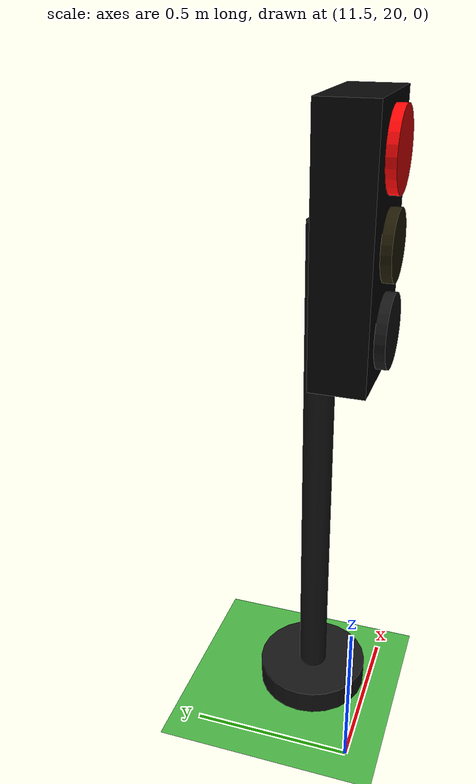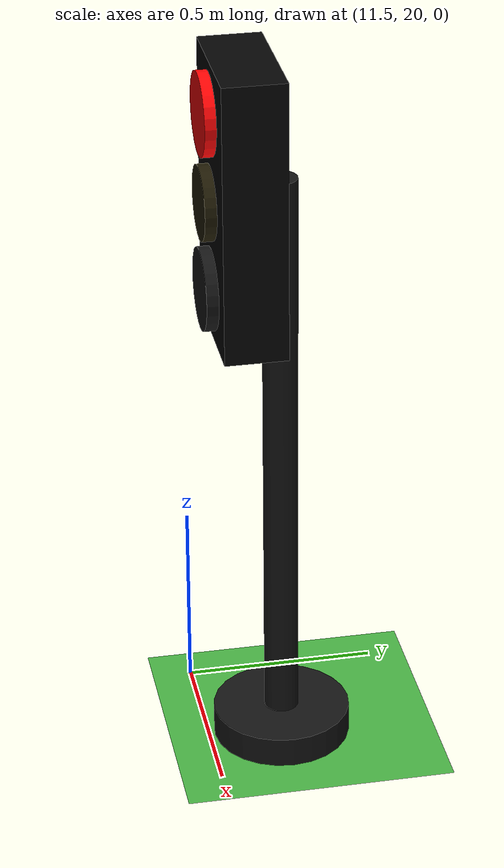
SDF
<sdf version="1.10">
 <world name="city_second">
  <model name="ground_plane">
   <static>true</static>
   <link name="link">
    <collision name="collision">
     <geometry><plane><normal>0 0 1</normal><size>300 300</size></plane></geometry>
    </collision>
    <visual name="visual">
     <geometry><plane><normal>0 0 1</normal><size>300 300</size></plane></geometry>
     <material>
      <ambient>0.280000001 0.689999998 0.25999999 1</ambient>
      <diffuse>0.280000001 0.689999998 0.25999999 1</diffuse>
      <specular>0.0299999993 0.0299999993 0.0299999993 1</specular>
     </material>
    </visual>
    <inertial>
     <mass>1</mass>
     <inertia><ixx>1</ixx><ixy>0</ixy><ixz>0</ixz><iyy>1</iyy><iyz>0</iyz><izz>1</izz></inertia>
    </inertial>
   </link>
  </model>
  <model name="simple_traffic_light_red_south_2">
   <static>true</static>
   <pose>11.805923389308813 20.195423981041646 0 0 0 -3.1415900000000754</pose>
   <link name="base">
    <pose>0 0 0.040000000000000001 0 0 0</pose>
    <collision name="collision">
     <geometry>
      <cylinder><radius>0.17999999999999999</radius><length>0.080000000000000002</length></cylinder>
     </geometry>
    </collision>
    <visual name="visual">
     <geometry>
      <cylinder><radius>0.17999999999999999</radius><length>0.080000000000000002</length></cylinder>
     </geometry>
     <material>
      <ambient>0.0799999982 0.0799999982 0.0799999982 1</ambient>
      <diffuse>0.0799999982 0.0799999982 0.0799999982 1</diffuse>
      <specular>0.150000006 0.150000006 0.150000006 1</specular>
      <emissive>0 0 0 1</emissive>
     </material>
    </visual>
    <inertial>
     <mass>1</mass>
     <inertia><ixx>1</ixx><ixy>0</ixy><ixz>0</ixz><iyy>1</iyy><iyz>0</iyz><izz>1</izz></inertia>
    </inertial>
   </link>
   <link name="pole">
    <pose>0 7.1054273576010019e-15 0.80000000000000004 0 0 0</pose>
    <collision name="collision">
     <geometry>
      <cylinder><radius>0.044999999999999998</radius><length>1.6000000000000001</length></cylinder>
     </geometry>
    </collision>
    <visual name="visual">
     <geometry>
      <cylinder><radius>0.044999999999999998</radius><length>1.6000000000000001</length></cylinder>
     </geometry>
     <material>
      <ambient>0.0799999982 0.0799999982 0.0799999982 1</ambient>
      <diffuse>0.0799999982 0.0799999982 0.0799999982 1</diffuse>
      <specular>0.150000006 0.150000006 0.150000006 1</specular>
      <emissive>0 0 0 1</emissive>
     </material>
    </visual>
    <inertial>
     <mass>1</mass>
     <inertia><ixx>1</ixx><ixy>0</ixy><ixz>0</ixz><iyy>1</iyy><iyz>0</iyz><izz>1</izz></inertia>
    </inertial>
   </link>
   <link name="signal_box">
    <pose>7.1054273576010019e-15 0.090000000000010516 1.55 0 0 0</pose>
    <collision name="collision">
     <geometry><box><size>0.34000000000000002 0.16 0.71999999999999997</size></box></geometry>
    </collision>
    <visual name="visual">
     <geometry><box><size>0.34000000000000002 0.16 0.71999999999999997</size></box></geometry>
     <material>
      <ambient>0.0199999996 0.0199999996 0.0199999996 1</ambient>
      <diffuse>0.0199999996 0.0199999996 0.0199999996 1</diffuse>
      <specular>0.150000006 0.150000006 0.150000006 1</specular>
      <emissive>0 0 0 1</emissive>
     </material>
    </visual>
    <inertial>
     <mass>1</mass>
     <inertia><ixx>1</ixx><ixy>0</ixy><ixz>0</ixz><iyy>1</iyy><iyz>0</iyz><izz>1</izz></inertia>
    </inertial>
   </link>
   <link name="red_lens">
    <pose>0 0.18100000000000449 1.78 1.5707963268 -1.0315606742787108e-16 3.023159174476358e-16</pose>
    <collision name="collision">
     <geometry><cylinder><radius>0.105</radius><length>0.035000000000000003</length></cylinder></geometry>
    </collision>
    <visual name="visual">
     <geometry><cylinder><radius>0.105</radius><length>0.035000000000000003</length></cylinder></geometry>
     <material>
      <ambient>1 0.0199999996 0.0199999996 1</ambient>
      <diffuse>1 0.0199999996 0.0199999996 1</diffuse>
      <specular>0.150000006 0.150000006 0.150000006 1</specular>
      <emissive>1 0.0199999996 0.0199999996 1</emissive>
     </material>
    </visual>
    <inertial>
     <mass>1</mass>
     <inertia><ixx>1</ixx><ixy>0</ixy><ixz>0</ixz><iyy>1</iyy><iyz>0</iyz><izz>1</izz></inertia>
    </inertial>
   </link>
   <link name="yellow_lens">
    <pose>7.1054273576010019e-15 0.18200000000000927 1.55 1.5707963268 -1.0315606742787108e-16 3.023159174476358e-16</pose>
    <collision name="collision">
     <geometry>
      <cylinder><radius>0.095000000000000001</radius><length>0.035000000000000003</length></cylinder>
     </geometry>
    </collision>
    <visual name="visual">
     <geometry>
      <cylinder><radius>0.095000000000000001</radius><length>0.035000000000000003</length></cylinder>
     </geometry>
     <material>
      <ambient>0.119999997 0.100000001 0.0199999996 1</ambient>
      <diffuse>0.119999997 0.100000001 0.0199999996 1</diffuse>
      <specular>0.150000006 0.150000006 0.150000006 1</specular>
      <emissive>0 0 0 1</emissive>
     </material>
    </visual>
    <inertial>
     <mass>1</mass>
     <inertia><ixx>1</ixx><ixy>0</ixy><ixz>0</ixz><iyy>1</iyy><iyz>0</iyz><izz>1</izz></inertia>
    </inertial>
   </link>
   <link name="green_lens">
    <pose>-7.1054273576010019e-15 0.18300000000000693 1.3200000000000001 1.5707963268 -1.0315606742787108e-16 3.023159174476358e-16</pose>
    <collision name="collision">
     <geometry><cylinder><radius>0.105</radius><length>0.035000000000000003</length></cylinder></geometry>
    </collision>
    <visual name="visual">
     <geometry><cylinder><radius>0.105</radius><length>0.035000000000000003</length></cylinder></geometry>
     <material>
      <ambient>0.0799999982 0.0799999982 0.0799999982 1</ambient>
      <diffuse>0.0799999982 0.0799999982 0.0799999982 1</diffuse>
      <specular>0.150000006 0.150000006 0.150000006 1</specular>
      <emissive>0 0 0 1</emissive>
     </material>
    </visual>
    <inertial>
     <mass>1</mass>
     <inertia><ixx>1</ixx><ixy>0</ixy><ixz>0</ixz><iyy>1</iyy><iyz>0</iyz><izz>1</izz></inertia>
    </inertial>
   </link>
   <light name="red_glow" type="point">
    <pose>0 0.28 1.78 0 0 0</pose>
    <diffuse>1 0.02 0.02 1</diffuse>
    <specular>1 0.02 0.02 1</specular>
    <attenuation>
     <range>3.0</range>
     <constant>0.8</constant>
     <linear>0.15</linear>
     <quadratic>0.02</quadratic>
    </attenuation>
    <cast_shadows>false</cast_shadows>
   </light>
  </model>
 </world>
</sdf>
